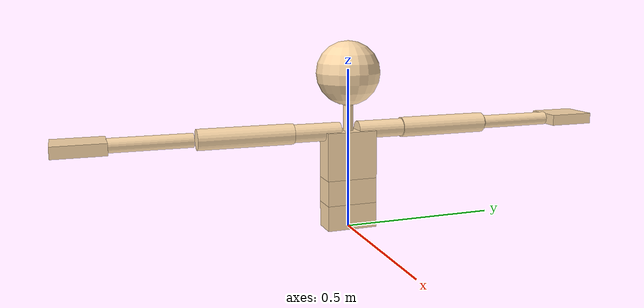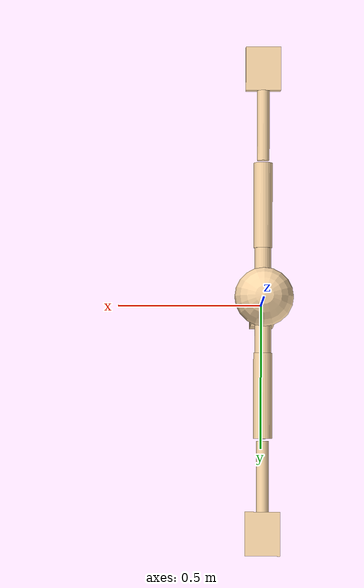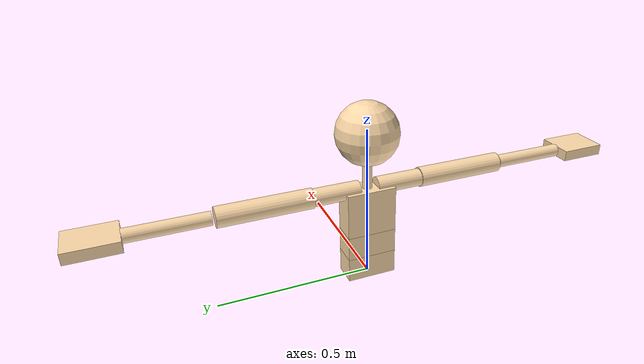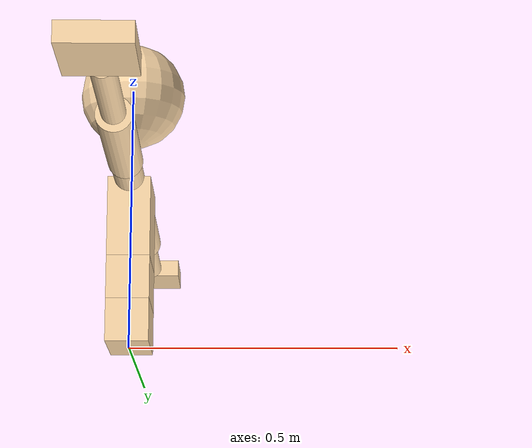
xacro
<?xml version="1.0"?>

<robot name="human" xmlns:xacro="http://www.ros.org/wiki/xacro">

<xacro:property name="hip_length" 	value="0.08" />
<xacro:property name="ab_length" 	value="0.08"/>
<xacro:property name="chest_length" 	value="0.15" />
<xacro:property name="chest_width" 	value="0.3" />
<xacro:property name="neck_length" 	value="0.08"/>

<xacro:property name="upperarm_length" value="0.3" />
<xacro:property name="forearm_length" value="0.24" />
<xacro:property name="hand_length" 	value="0.15" />

<material name="color">
    <color rgba="1 0.86 0.67 1"/>
</material>

<material name="gray">
  <color rgba="0.42 0.4 0.42 0.4"/>
</material>

<material name="darkgray">
  <color rgba="0.3 0.3 0.3 0.5"/>
</material>

<material name="white">
  <color rgba="1 1 1 0.0"/>
</material>

<!--To open this model with Gazebo replace the null masses, inertias and dimensions of the 'fake links f1 and f2'-->
    <!--LINKS-->
	<!--Link base (1)-->
	<link name="Hip_mocap">
    </link>

	<link name="hip">
        <inertial>
            <mass value="5.696"/>
            <origin xyz="0 0 ${0.5*hip_length}" rpy="0 0 0" />
            <inertia ixx="0.05" iyy="0.02" izz="0.06" ixy="0" ixz="0" iyz="0"/>
        </inertial>
        <visual>
            <origin xyz="0 0 ${0.5*hip_length}" rpy="0 0 0" />
            <geometry>
                <box size="${hip_length} ${2*hip_length} ${hip_length}"/>
            </geometry>
            <material name="color"/>
        </visual>
        <collision>
            <origin xyz="0 0 ${0.5*hip_length}" rpy="0 0 0" />
            <geometry>
                <box size="${hip_length} ${2*hip_length} ${hip_length}"/>
            </geometry>
        </collision>
    </link>

	<link name="Ab_f1">
        <inertial>
            <mass value="0"/>
            <origin xyz="0 0 0" rpy="0 0 0" />
            <inertia ixx="0" iyy="0" izz="0" ixy="0" ixz="0" iyz="0"/>
        </inertial>
    </link>
    	<link name="Ab_f2">
        <inertial>
            <mass value="0"/>
            <origin xyz="0 0 0" rpy="0 0 0" />
            <inertia ixx="0" iyy="0" izz="0" ixy="0" ixz="0" iyz="0"/>
        </inertial>
    </link>
	<link name="Ab">
        <inertial>
            <mass value="7.2624"/>
            <origin xyz="0 0 ${0.5*ab_length}" rpy="0 0 0" />
            <inertia ixx="0.05" iyy="0.04" izz="0.08" ixy="0" ixz="0" iyz="0"/>
        </inertial>

        <visual>
            <origin xyz="0 0 ${0.5*ab_length}" rpy="0 0 0" />
            <geometry>
                <box size="${hip_length} ${2*hip_length} ${ab_length}"/>
            </geometry>
            <material name="color"/>
        </visual>
        <collision>
            <origin xyz="0 0 ${0.5*ab_length}" rpy="0 0 0" />
            <geometry>
                <box size="${hip_length} ${2*hip_length} ${ab_length}"/>
            </geometry>
        </collision>
    </link>

	<link name="Chest_f1">
        <inertial>
            <mass value="0"/>
            <origin xyz="0 0 0" rpy="0 0 0" />
            <inertia ixx="0" iyy="0" izz="0" ixy="0" ixz="0" iyz="0"/>
        </inertial>
    </link>
	<link name="Chest_f2">
        <inertial>
            <mass value="0"/>
            <origin xyz="0 0 0" rpy="0 0 0" />
            <inertia ixx="0" iyy="0" izz="0" ixy="0" ixz="0" iyz="0"/>
        </inertial>
    </link>
	<link name="Chest">
        <inertial>
            <mass value="2.848"/>
            <origin xyz="0 0 ${0.5*chest_length}" rpy="0 0 0" />
            <inertia ixx="0.0040381" iyy="0.0077541" izz="0.0053923" ixy="0" ixz="0" iyz="0"/>
        </inertial>
        <visual>
            <origin xyz="0 0 ${0.5*chest_length}" rpy="0 0 0" />
            <geometry>
                <box size="${hip_length} ${2*hip_length} ${chest_length}"/>
            </geometry>
            <material name="color"/>
        </visual>
        <collision>
            <origin xyz="0 0 ${0.5*chest_length}" rpy="0 0 0" />
            <geometry>
                <box size="${hip_length} ${2*hip_length} ${chest_length-0.03}"/>
            </geometry>
        </collision>

    </link>
	<link name="Neck_f1">
        <inertial>
            <mass value="0"/>
            <origin xyz="0 0 0" rpy="0 0 0" />
            <inertia ixx="0" iyy="0" izz="0" ixy="0" ixz="0" iyz="0"/>
        </inertial>
    </link>
	<link name="Neck_f2">
        <inertial>
            <mass value="0"/>
            <origin xyz="0 0 0" rpy="0 0 0" />
            <inertia ixx="0" iyy="0" izz="0" ixy="0" ixz="0" iyz="0"/>
        </inertial>
    </link>
	<link name="Neck">
        <inertial>
            <mass value="0.8544"/>
            <origin xyz="0 0 ${0.5*neck_length}" rpy="0 0 0" />
            <inertia ixx="0.00086442" iyy="0.00086442" izz="0.00040681" ixy="0" ixz="0" iyz="0"/>
        </inertial>
        <visual>
            <origin xyz="0 0 ${0.5*neck_length}" rpy="0 0 0" />
            <geometry>
		<cylinder length="${neck_length}" radius="0.01543"/>
            </geometry>
            <material name="color"/>
        </visual>
        <collision>
            <origin xyz="0 0 ${0.5*neck_length}" rpy="0 0 0" />
            <geometry>
		<cylinder length="${neck_length}" radius="0.01543"/>
            </geometry>
        </collision>
    </link>
	<link name="Head_f1">
        <inertial>
            <mass value="0"/>
            <origin xyz="0 0 0" rpy="0 0 0" />
            <inertia ixx="0" iyy="0" izz="0" ixy="0" ixz="0" iyz="0"/>
        </inertial>
    </link>
    	<link name="Head_f2">
        <inertial>
            <mass value="0"/>
            <origin xyz="0 0 0" rpy="0 0 0" />
            <inertia ixx="0" iyy="0" izz="0" ixy="0" ixz="0" iyz="0"/>
        </inertial>
    </link>
	<link name="Head">
        <inertial>
            <mass value="2.5632"/>
            <origin xyz="0           0    0.099452" rpy="0 0 0" />
            <inertia ixx="0.010141" iyy="0.010141" izz="0.010141" ixy="0" ixz="0" iyz="0"/>
        </inertial>
        <visual>
            <origin xyz="0           0    0.099452" rpy="0 0 0" />
            <geometry>
                <sphere radius="0.099452"/>
            </geometry>
            <material name="color"/>
        </visual>
        <collision>
            <origin xyz="0           0    0.099452" rpy="0 0 0" />
            <geometry>
                <sphere radius="0.099452"/>
            </geometry>
        </collision>
    </link>

	<!--Right Arm-->
	<link name="RightShoulder_f1">
        <inertial>
            <mass value="0"/>
            <origin xyz="0 0 0" rpy="0 0 0" />
            <inertia ixx="0" iyy="0" izz="0" ixy="0" ixz="0" iyz="0"/>
        </inertial>
    </link>
    	<link name="RightShoulder_f2">
        <inertial>
            <mass value="0"/>
            <origin xyz="0 0 0" rpy="0 0 0" />
            <inertia ixx="0" iyy="0" izz="0" ixy="0" ixz="0" iyz="0"/>
        </inertial>
    </link>
	<link name="RightShoulder">
        <inertial>
            <mass value="2.2072"/>
            <origin xyz="0  ${-0.25*chest_width} 0" rpy="1.5708 0 0" />
            <inertia ixx="0.0050082" iyy="0.00086686" izz="0.0050082" ixy="0" ixz="0" iyz="0"/>
        </inertial>
        <visual>
            <origin xyz="0  ${-0.25*chest_width} 0" rpy="1.5708 0 0" />
            <geometry>
                <cylinder length="${0.5*chest_width}" radius="0.028026"/>
            </geometry>
            <material name="color"/>
        </visual>
        <collision>
            <origin xyz="0  ${-0.25*chest_width} 0" rpy="1.5708 0 0" />
            <geometry>
                <cylinder length="${0.5*chest_width}" radius="0.028026"/>
            </geometry>
        </collision>

    </link>
	<link name="RightUpperArm_f1">
        <inertial>
            <mass value="0"/>
            <origin xyz="0 0 0" rpy="0 0 0" />
            <inertia ixx="0" iyy="0" izz="0" ixy="0" ixz="0" iyz="0"/>
        </inertial>
    </link>
	<link name="RightUpperArm_f2">
        <inertial>
            <mass value="0"/>
            <origin xyz="0 0 0" rpy="0 0 0" />
            <inertia ixx="0" iyy="0" izz="0" ixy="0" ixz="0" iyz="0"/>
        </inertial>
    </link>
    <link name="RightUpperArm">
        <inertial>
            <mass value="2.136"/>
            <origin xyz="0    -0.14573           0" rpy="1.5708 0 0" />
            <inertia ixx="0.015663" iyy="0.0010831" izz="0.015663" ixy="0" ixz="0" iyz="0"/>
        </inertial>
        <visual>
            <origin xyz="0    -0.14573           0" rpy="1.5708 0 0" />
            <geometry>
                <cylinder length="0.29147" radius="0.031846"/>
            </geometry>
            <material name="color"/>
        </visual>
        <collision>
            <origin xyz="0    -0.14573           0" rpy="1.5708 0 0" />
            <geometry>
                <cylinder length="0.29147" radius="0.031846"/>
            </geometry>
        </collision>

    </link>
	<link name="RightForeArm_f1">
        <inertial>
            <mass value="0"/>
            <origin xyz="0 0 0" rpy="0 0 0" />
            <inertia ixx="0" iyy="0" izz="0" ixy="0" ixz="0" iyz="0"/>
        </inertial>
    </link>
    <link name="RightForeArm_f2">
        <inertial>
            <mass value="0"/>
            <origin xyz="0 0 0" rpy="0 0 0" />
            <inertia ixx="0" iyy="0" izz="0" ixy="0" ixz="0" iyz="0"/>
        </inertial>
    </link>
	<link name="RightForeArm">
        <inertial>
            <mass value="1.424"/>
            <origin xyz="0    -0.12047           0" rpy="1.5708 0 0" />
            <inertia ixx="0.0070493" iyy="0.00032093" izz="0.0070493" ixy="0" ixz="0" iyz="0"/>
        </inertial>
        <visual>
            <origin xyz="0    -0.12047           0" rpy="1.5708 0 0" />
            <geometry>
                <cylinder length="0.24094" radius="0.021231"/>
            </geometry>
            <material name="color"/>
        </visual>
        <collision>
            <origin xyz="0    -0.12047           0" rpy="1.5708 0 0" />
            <geometry>
                <cylinder length="0.24094" radius="0.021231"/>
            </geometry>
        </collision>

    </link>
	<link name="RightHand_f1">
        <inertial>
            <mass value="0"/>
            <origin xyz="0 0 0" rpy="0 0 0" />
            <inertia ixx="0" iyy="0" izz="0" ixy="0" ixz="0" iyz="0"/>
        </inertial>
    </link>
    <link name="RightHand_f2">
        <inertial>
            <mass value="0"/>
            <origin xyz="0 0 0" rpy="0 0 0" />
            <inertia ixx="0" iyy="0" izz="0" ixy="0" ixz="0" iyz="0"/>
        </inertial>
    </link>
	<link name="RightHand">
        <inertial>
            <mass value="0.4272"/>
            <origin xyz="0 ${-0.5*hand_length} 0" rpy="0 0 0" />
            <inertia ixx="0.0012426" iyy="0.00058792" izz="0.0017021" ixy="0" ixz="0" iyz="0"/>
        </inertial>
        <visual>
            <origin xyz="0 ${-0.5*hand_length} 0" rpy="0 0 0" />
            <geometry>
                <box size="0.12 ${hand_length} 0.035"/>
            </geometry>
            <material name="color"/>
        </visual>
        <collision>
            <origin xyz="0 ${-0.5*hand_length} 0" rpy="0 0 0" />
            <geometry>
                <box size="0.12 ${hand_length} 0.035"/>
            </geometry>
        </collision>

    </link>
    <link name="RightHandCOM">
        <inertial>
            <mass value="0.00001"/>
            <origin xyz="0 0 0" rpy="0 0 0" />
            <inertia ixx="0" iyy="0" izz="0" ixy="0" ixz="0" iyz="0"/>
        </inertial>
        <visual>
            <origin xyz="0   0           0" rpy="0 0 0" />
            <geometry>
                <box size="0     0    0"/>
            </geometry>
            <material name="color"/>
        </visual>
    </link>

	<!--Chain from (12) to (15)-->
    <link name="LeftShoulder_f1">
        <inertial>
            <mass value="0"/>
            <origin xyz="0 0 0" rpy="0 0 0" />
            <inertia ixx="0" iyy="0" izz="0" ixy="0" ixz="0" iyz="0"/>
        </inertial>
    </link>
    <link name="LeftShoulder_f2">
        <inertial>
            <mass value="0"/>
            <origin xyz="0 0 0" rpy="0 0 0" />
            <inertia ixx="0" iyy="0" izz="0" ixy="0" ixz="0" iyz="0"/>
        </inertial>
    </link>
	<link name="LeftShoulder">
        <inertial>
            <mass value="2.2072"/>
			<!--COM origin wrt jLeftC7Shoulder-->
            <origin xyz="0  ${0.25*chest_width} 0" rpy="1.5708 0 0" />
            <inertia ixx="0.0050082" iyy="0.00086686" izz="0.0050082" ixy="0" ixz="0" iyz="0"/>
        </inertial>
        <visual>
			<!--box origin wrt jLeftC7Shoulder. RPY rotated of pi/2.-->
            <origin xyz="0  ${0.25*chest_width} 0" rpy="1.5708 0 0" />
            <geometry>
                <cylinder length="${0.5*chest_width}" radius="0.028026"/>
            </geometry>
            <material name="color"/>
        </visual>
        <collision>
            <origin xyz="0  ${0.25*chest_width} 0" rpy="1.5708 0 0" />
            <geometry>
                <cylinder length="${0.5*chest_width}" radius="0.028026"/>
            </geometry>
        </collision>

    </link>
	<link name="LeftUpperArm_f1">
        <inertial>
            <mass value="0"/>
            <origin xyz="0 0 0" rpy="0 0 0" />
            <inertia ixx="0" iyy="0" izz="0" ixy="0" ixz="0" iyz="0"/>
        </inertial>
    </link>
	<link name="LeftUpperArm_f2">
        <inertial>
            <mass value="0"/>
            <origin xyz="0 0 0" rpy="0 0 0" />
            <inertia ixx="0" iyy="0" izz="0" ixy="0" ixz="0" iyz="0"/>
        </inertial>
    </link>
	<link name="LeftUpperArm">
        <inertial>
            <mass value="2.136"/>
            <origin xyz="0     0.14573           0" rpy="1.5708 0 0" />
            <inertia ixx="0.015663" iyy="0.0010831" izz="0.015663" ixy="0" ixz="0" iyz="0"/>
        </inertial>
        <visual>
            <origin xyz="0     0.14573           0" rpy="1.5708 0 0" />
            <geometry>
                <cylinder length="0.29147" radius="0.031846"/>
            </geometry>
            <material name="color"/>
        </visual>
        <collision>
            <origin xyz="0     0.14573           0" rpy="1.5708 0 0" />
            <geometry>
                <cylinder length="0.29147" radius="0.031846"/>
            </geometry>
        </collision>

    </link>
	<link name="LeftForeArm_f1">
        <inertial>
            <mass value="0"/>
            <origin xyz="0 0 0" rpy="0 0 0" />
            <inertia ixx="0" iyy="0" izz="0" ixy="0" ixz="0" iyz="0"/>
        </inertial>
    </link>
    <link name="LeftForeArm_f2">
        <inertial>
            <mass value="0"/>
            <origin xyz="0 0 0" rpy="0 0 0" />
            <inertia ixx="0" iyy="0" izz="0" ixy="0" ixz="0" iyz="0"/>
        </inertial>
    </link>
	<link name="LeftForeArm">
        <inertial>
            <mass value="1.424"/>
			<!--COM origin wrt jLeftElbow-->
            <origin xyz="0     0.12047           0" rpy="1.5708 0 0" />
            <inertia ixx="0.0070493" iyy="0.00032093" izz="0.0070493" ixy="0" ixz="0" iyz="0"/>
        </inertial>
        <visual>
			<!--box origin wrt jLeftElbow. RPY rotated of pi/2.-->
            <origin xyz="0     0.12047           0" rpy="1.5708 0 0" />
            <geometry>
                <cylinder length="0.24094" radius="0.021231"/>
            </geometry>
            <material name="color"/>
        </visual>
        <collision>
			<!--box origin wrt jLeftElbow. RPY rotated of pi/2.-->
            <origin xyz="0     0.12047           0" rpy="1.5708 0 0" />
            <geometry>
                <cylinder length="0.24094" radius="0.021231"/>
            </geometry>
        </collision>

    </link>
	<link name="LeftHand_f1">
        <inertial>
            <mass value="0"/>
            <origin xyz="0 0 0" rpy="0 0 0" />
            <inertia ixx="0" iyy="0" izz="0" ixy="0" ixz="0" iyz="0"/>
        </inertial>
    </link>
    <link name="LeftHand_f2">
        <inertial>
            <mass value="0"/>
            <origin xyz="0 0 0" rpy="0 0 0" />
            <inertia ixx="0" iyy="0" izz="0" ixy="0" ixz="0" iyz="0"/>
        </inertial>
    </link>
	<link name="LeftHand">
        <inertial>
            <mass value="0.4272"/>
            <origin xyz="0 ${0.5*hand_length} 0" rpy="0 0 0" />
            <inertia ixx="0.0012426" iyy="0.00058792" izz="0.0017021" ixy="0" ixz="0" iyz="0"/>
        </inertial>
        <visual>
            <origin xyz="0 ${0.5*hand_length} 0" rpy="0 0 0" />
            <geometry>
                <box size="0.12 ${hand_length} 0.035"/>
            </geometry>
            <material name="color"/>
        </visual>
        <collision>
            <origin xyz="0 ${0.5*hand_length} 0" rpy="0 0 0" />
            <geometry>
                <box size="0.12 ${hand_length} 0.035"/>
            </geometry>
        </collision>

    </link>
    <link name="LeftHandCOM">
        <inertial>
            <mass value="0.00001"/>
            <origin xyz="0 0 0" rpy="0 0 0" />
            <inertia ixx="0" iyy="0" izz="0" ixy="0" ixz="0" iyz="0"/>
        </inertial>
        <visual>
            <origin xyz="0    0           0" rpy="0 0 0" />
            <geometry>
                <box size="0     0    0"/>
            </geometry>
            <material name="color"/>
        </visual>
    </link>

	<!--JOINTS-->
    <joint name="static_offset_mocap" type="fixed">
        <origin xyz="0 0 0" rpy="0 0 0"/>
        <parent link="Hip_mocap"/>
        <child link="hip"/>
        <axis xyz="0 0 0" />
    </joint>

	<joint name="Ab_rotx" type="revolute">
        <origin xyz="0 0 ${hip_length}" rpy="0 0 0"/>
        <parent link="hip"/>
        <child link="Ab_f1"/>
        <dynamics damping="0.1" friction="0.0"/>
        <limit effort="30" velocity="1.0" lower="-0.610865" upper="0.610865" />
        <axis xyz="1 0 0" />
    </joint>
	<joint name="Ab_roty" type="revolute">
        <origin xyz="0 0 0" rpy="0 0 0"/>
        <parent link="Ab_f1"/>
        <child link="Ab_f2"/>
        <dynamics damping="0.1" friction="0.0"/>
        <limit effort="30" velocity="1.0" lower="-0.523599" upper="1.309" />
        <axis xyz="0 1 0" />
    </joint>
	<joint name="Ab_rotz" type="revolute">
        <origin xyz="0 0 0" rpy="0 0 0"/>
        <parent link="Ab_f2"/>
        <child link="Ab"/>
        <dynamics damping="0.1" friction="0.0"/>
        <limit effort="30" velocity="1.0" lower="-0.610865" upper="0.610865" />
        <axis xyz="0 0 1" />
    </joint>
	<joint name="Chest_rotx" type="revolute">
        <origin xyz="0 0 ${ab_length}" rpy="0 0 0"/>
        <parent link="Ab"/>
        <child link="Chest_f1"/>
        <dynamics damping="0.1" friction="0.0"/>
        <limit effort="30" velocity="1.0" lower="-0.523599" upper="1.309" />
        <axis xyz="1 0 0" />
    </joint>
	<joint name="Chest_roty" type="revolute">
        <origin xyz="0 0 0" rpy="0 0 0"/>
        <parent link="Chest_f1"/>
        <child link="Chest_f2"/>
        <dynamics damping="0.1" friction="0.0"/>
        <limit effort="30" velocity="1.0" lower="-0.349066" upper="0.349066" />
        <axis xyz="0 1 0" />
    </joint>
	<joint name="Chest_rotz" type="revolute">
        <origin xyz="0 0 0" rpy="0 0 0"/>
        <parent link="Chest_f2"/>
        <child link="Chest"/>
        <dynamics damping="0.1" friction="0.0"/>
        <limit effort="30" velocity="1.0" lower="-0.261799" upper="0.698132" />
        <axis xyz="0 0 1" />
    </joint>
    <joint name="Neck_rotx" type="revolute">
        <origin xyz="0 0 ${chest_length}" rpy="0 0 0"/>
        <parent link="Chest"/>
        <child link="Neck_f1"/>
        <dynamics damping="0.1" friction="0.0"/>
        <limit effort="30" velocity="1.0" lower="-0.610865" upper="0.610865" />
        <axis xyz="1 0 0" />
    </joint>
	<joint name="Neck_roty" type="revolute">
        <origin xyz="0 0 0" rpy="0 0 0"/>
        <parent link="Neck_f1"/>
        <child link="Neck_f2"/>
        <dynamics damping="0.1" friction="0.0"/>
        <limit effort="30" velocity="1.0" lower="-0.959931" upper="1.5708" />
        <axis xyz="0 1 0" />
    </joint>
    <joint name="Neck_rotz" type="revolute">
        <origin xyz="0 0 0" rpy="0 0 0"/>
        <parent link="Neck_f2"/>
        <child link="Neck"/>
        <dynamics damping="0.1" friction="0.0"/>
        <limit effort="30" velocity="1.0" lower="-1.22173" upper="1.22173" />
        <axis xyz="0 0 1" />
    </joint>
	<joint name="Head_rotx" type="revolute">
        <origin xyz="0 0 ${neck_length}" rpy="0 0 0"/>
        <parent link="Neck"/>
        <child link="Head_f1"/>
        <dynamics damping="0.1" friction="0.0"/>
        <limit effort="30" velocity="1.0" lower="-0.610865" upper="0.610865" />
        <axis xyz="1 0 0" />
    </joint>
	<joint name="Head_roty" type="revolute">
        <origin xyz="0 0 0" rpy="0 0 0"/>
        <parent link="Head_f1"/>
        <child link="Head_f2"/>
        <dynamics damping="0.1" friction="0.0"/>
        <limit effort="30" velocity="1.0" lower="-0.436332" upper="0.174533" />
        <axis xyz="0 1 0" />
    </joint>
    <joint name="Head_rotz" type="revolute">
        <origin xyz="0 0 0" rpy="0 0 0"/>
        <parent link="Head_f2"/>
        <child link="Head"/>
        <dynamics damping="0.1" friction="0.0"/>
        <limit effort="30" velocity="1.0" lower="-0.436332" upper="0.174533" />
        <axis xyz="0 0 1" />
    </joint>

	<!--Right Arm-->
	<joint name="jRightC7Shoulder_rotx" type="revolute">
        <origin xyz="0   -0.029713 ${chest_length}" rpy="0 0 0"/>
        <parent link="Chest"/>
        <child link="RightShoulder_f1"/>
        <dynamics damping="0.1" friction="0.0"/>
        <limit effort="30" velocity="1.0" lower="-0.785398" upper="0.0872665" />
        <axis xyz="1 0 0" />
    </joint>
    <joint name="jRightC7Shoulder_roty" type="revolute">
        <origin xyz="0 0 0" rpy="0 0 0"/>
        <parent link="RightShoulder_f1"/>
        <child link="RightShoulder_f2"/>
        <dynamics damping="0.1" friction="0.0"/>
        <limit effort="30" velocity="1.0" lower="-0.785398" upper="0.0872665" />
        <axis xyz="0 1 0" />
    </joint>
    <joint name="jRightC7Shoulder_rotz" type="revolute">
        <origin xyz="0 0 0" rpy="0 0 0"/>
        <parent link="RightShoulder_f2"/>
        <child link="RightShoulder"/>
        <dynamics damping="0.1" friction="0.0"/>
        <limit effort="30" velocity="1.0" lower="-0.785398" upper="0.0872665" />
        <axis xyz="0 0 1" />
    </joint>
	<joint name="jRightShoulder_rotx" type="revolute">
        <origin xyz="0  ${-0.5*chest_width}  0" rpy="0 0 0"/>
        <parent link="RightShoulder"/>
        <child link="RightUpperArm_f1"/>
        <dynamics damping="0.1" friction="0.0"/>
        <limit effort="30" velocity="1.0" lower="-2.35619" upper="1.5708" />
        <axis xyz="1 0 0" />
    </joint>
	<joint name="jRightShoulder_roty" type="revolute">
        <origin xyz="0 0 0" rpy="0 0 0"/>
        <parent link="RightUpperArm_f1"/>
        <child link="RightUpperArm_f2"/>
        <dynamics damping="0.1" friction="0.0"/>
        <limit effort="30" velocity="1.0" lower="-1.5708" upper="1.5708" />
        <axis xyz="0 1 0" />
    </joint>
    <joint name="jRightShoulder_rotz" type="revolute">
        <origin xyz="0 0 0" rpy="0 0 0"/>
        <parent link="RightUpperArm_f2"/>
        <child link="RightUpperArm"/>
        <dynamics damping="0.1" friction="0.0"/>
        <limit effort="30" velocity="1.0" lower="-0.785398" upper="3.14159" />
        <axis xyz="0 0 1" />
    </joint>
	<joint name="jRightElbow_rotx" type="revolute">
        <origin xyz="0 ${-upperarm_length} 0" rpy="0 0 0"/>
        <parent link="RightUpperArm"/>
        <child link="RightForeArm_f1"/>
        <dynamics damping="0.1" friction="0.0"/>
        <limit effort="30" velocity="1.0" lower="0" upper="2.53073" />
        <axis xyz="0 0 1" />
    </joint>
    <joint name="jRightElbow_roty" type="revolute">
        <origin xyz="0 0 0" rpy="0 0 0"/>
        <parent link="RightForeArm_f1"/>
        <child link="RightForeArm_f2"/>
        <dynamics damping="0.1" friction="0.0"/>
        <limit effort="30" velocity="1.0" lower="-1.5708" upper="1.48353" />
        <axis xyz="0 1 0" />
    </joint>
    <joint name="jRightElbow_rotz" type="revolute">
        <origin xyz="0 0 0" rpy="0 0 0"/>
        <parent link="RightForeArm_f2"/>
        <child link="RightForeArm"/>
        <dynamics damping="0.1" friction="0.0"/>
        <limit effort="30" velocity="1.0" lower="-1.5708" upper="1.48353" />
        <axis xyz="0 0 1" />
    </joint>
    <joint name="jRightWrist_rotx" type="revolute">
        <origin xyz="0.000102 ${-forearm_length} 0" rpy="0 0 0"/>
        <parent link="RightForeArm"/>
        <child link="RightHand_f1"/>
        <dynamics damping="0.1" friction="0.0"/>
        <limit effort="30" velocity="1.0" lower="-0.872665" upper="1.0472" />
        <axis xyz="1 0 0" />
    </joint>
	<joint name="jRightWrist_roty" type="revolute">
        <origin xyz="0 0 0" rpy="0 0 0"/>
        <parent link="RightHand_f1"/>
        <child link="RightHand_f2"/>
        <dynamics damping="0.1" friction="0.0"/>
        <limit effort="30" velocity="1.0" lower="-0.872665" upper="1.0472" />
        <axis xyz="0 1 0" />
    </joint>
	<joint name="jRightWrist_rotz" type="revolute">
        <origin xyz="0 0 0" rpy="0 0 0"/>
        <parent link="RightHand_f2"/>
        <child link="RightHand"/>
        <dynamics damping="0.1" friction="0.0"/>
        <limit effort="30" velocity="1.0" lower="-0.523599" upper="0.349066" />
        <axis xyz="0 0 1" />
    </joint>
    <joint name="jRightHandCOM" type="fixed">
        <origin xyz="0 ${-0.5*hand_length} 0" rpy="1.57 0 0"/>
        <parent link="RightHand"/>
        <child link="RightHandCOM"/>
        <axis xyz="0 0 0" />
    </joint>

	<!--Left Arm-->
	<joint name="jLeftC7Shoulder_rotx" type="revolute">
        <origin xyz="0 0.029713 ${chest_length}" rpy="0 0 0"/>
        <parent link="Chest"/>
        <child link="LeftShoulder_f1"/>
        <dynamics damping="0.1" friction="0.0"/>
        <limit effort="30" velocity="1.0" lower="-0.0872665" upper="0.785398" />
        <axis xyz="1 0 0" />
    </joint>
    <joint name="jLeftC7Shoulder_roty" type="revolute">
        <origin xyz="0 0 0" rpy="0 0 0"/>
        <parent link="LeftShoulder_f1"/>
        <child link="LeftShoulder_f2"/>
        <dynamics damping="0.1" friction="0.0"/>
        <limit effort="30" velocity="1.0" lower="-0.0872665" upper="0.785398" />
        <axis xyz="0 1 0" />
    </joint>
    <joint name="jLeftC7Shoulder_rotz" type="revolute">
        <origin xyz="0 0 0" rpy="0 0 0"/>
        <parent link="LeftShoulder_f2"/>
        <child link="LeftShoulder"/>
        <dynamics damping="0.1" friction="0.0"/>
        <limit effort="30" velocity="1.0" lower="-0.0872665" upper="0.785398" />
        <axis xyz="0 0 1" />
    </joint>
	<joint name="jLeftShoulder_rotx" type="revolute">
        <origin xyz="0 ${0.5*chest_width} 0" rpy="0 0 0"/>
        <parent link="LeftShoulder"/>
        <child link="LeftUpperArm_f1"/>
        <dynamics damping="0.1" friction="0.0"/>
        <limit effort="30" velocity="1.0" lower="-1.5708" upper="2.35619" />
        <axis xyz="1 0 0" />
    </joint>
	<joint name="jLeftShoulder_roty" type="revolute">
        <origin xyz="0 0 0" rpy="0 0 0"/>
        <parent link="LeftUpperArm_f1"/>
        <child link="LeftUpperArm_f2"/>
        <dynamics damping="0.1" friction="0.0"/>
        <limit effort="30" velocity="1.0" lower="-1.5708" upper="1.5708" />
        <axis xyz="0 1 0" />
    </joint>
    	<joint name="jLeftShoulder_rotz" type="revolute">
        <origin xyz="0 0 0" rpy="0 0 0"/>
        <parent link="LeftUpperArm_f2"/>
        <child link="LeftUpperArm"/>
        <dynamics damping="0.1" friction="0.0"/>
        <limit effort="30" velocity="1.0" lower="-3.14159" upper="0.785398" />
        <axis xyz="0 0 1" />
    </joint>
    <joint name="jLeftElbow_rotx" type="revolute">
        <origin xyz="0 ${upperarm_length} 0" rpy="0 0 0"/>
        <parent link="LeftUpperArm"/>
        <child link="LeftForeArm_f1"/>
        <dynamics damping="0.1" friction="0.0"/>
        <limit effort="30" velocity="1.0" lower="-1.5708" upper="1.48353" />
        <axis xyz="1 0 0" />
    </joint>
    <joint name="jLeftElbow_roty" type="revolute">
        <origin xyz="0 0 0" rpy="0 0 0"/>
        <parent link="LeftForeArm_f1"/>
        <child link="LeftForeArm_f2"/>
        <dynamics damping="0.1" friction="0.0"/>
        <limit effort="30" velocity="1.0" lower="-1.5708" upper="1.48353" />
        <axis xyz="0 1 0" />
    </joint>
    	<joint name="jLeftElbow_rotz" type="revolute">
        <origin xyz="0 0 0" rpy="0 0 0"/>
        <parent link="LeftForeArm_f2"/>
        <child link="LeftForeArm"/>
        <dynamics damping="0.1" friction="0.0"/>
        <limit effort="30" velocity="1.0" lower="-2.53073" upper="0" />
        <axis xyz="0 0 1" />
    </joint>
	<joint name="jLeftWrist_rotx" type="revolute">
        <origin xyz="0.000102 ${forearm_length} 0" rpy="0 0 0"/>
        <parent link="LeftForeArm"/>
        <child link="LeftHand_f1"/>
        <dynamics damping="0.1" friction="0.0"/>
        <limit effort="30" velocity="1.0" lower="-1.0472" upper="0.872665" />
        <axis xyz="1 0 0" />
    </joint>
    <joint name="jLeftWrist_roty" type="revolute">
        <origin xyz="0 0 0" rpy="0 0 0"/>
        <parent link="LeftHand_f1"/>
        <child link="LeftHand_f2"/>
        <dynamics damping="0.1" friction="0.0"/>
        <limit effort="30" velocity="1.0" lower="-0.349066" upper="0.523599" />
        <axis xyz="0 1 0" />
    </joint>
	<joint name="jLeftWrist_rotz" type="revolute">
        <origin xyz="0 0 0" rpy="0 0 0"/>
        <parent link="LeftHand_f2"/>
        <child link="LeftHand"/>
        <dynamics damping="0.1" friction="0.0"/>
        <limit effort="30" velocity="1.0" lower="-0.349066" upper="0.523599" />
        <axis xyz="0 0 1" />
    </joint>
    	<joint name="jLeftHandCOM" type="fixed">
        <origin xyz="0 ${0.5*hand_length} 0" rpy="-1.57 0 0"/>
        <parent link="LeftHand"/>
        <child link="LeftHandCOM"/>
        <axis xyz="0 0 0" />
    </joint>

</robot>
